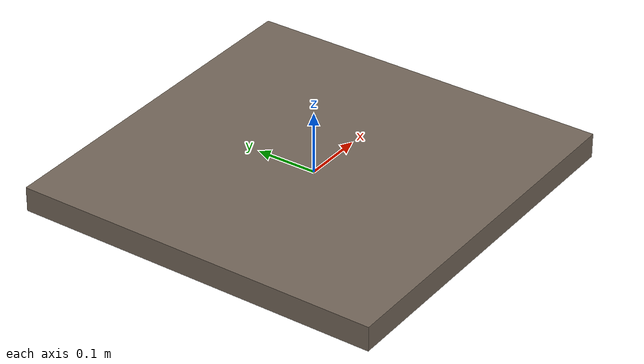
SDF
<?xml version="1.0"?>
<sdf version="1.10">
  <model name="work_surface">
    <static>true</static>
    <link name="link">
      <collision name="collision">
        <geometry>
          <box><size>0.60 0.60 0.04</size></box>
        </geometry>
      </collision>
      <visual name="visual">
        <geometry>
          <box><size>0.60 0.60 0.04</size></box>
        </geometry>
        <material>
          <ambient>0.25 0.22 0.20 1</ambient>
          <diffuse>0.45 0.40 0.35 1</diffuse>
          <specular>0.1 0.1 0.1 1</specular>
        </material>
      </visual>
    </link>
  </model>
</sdf>
